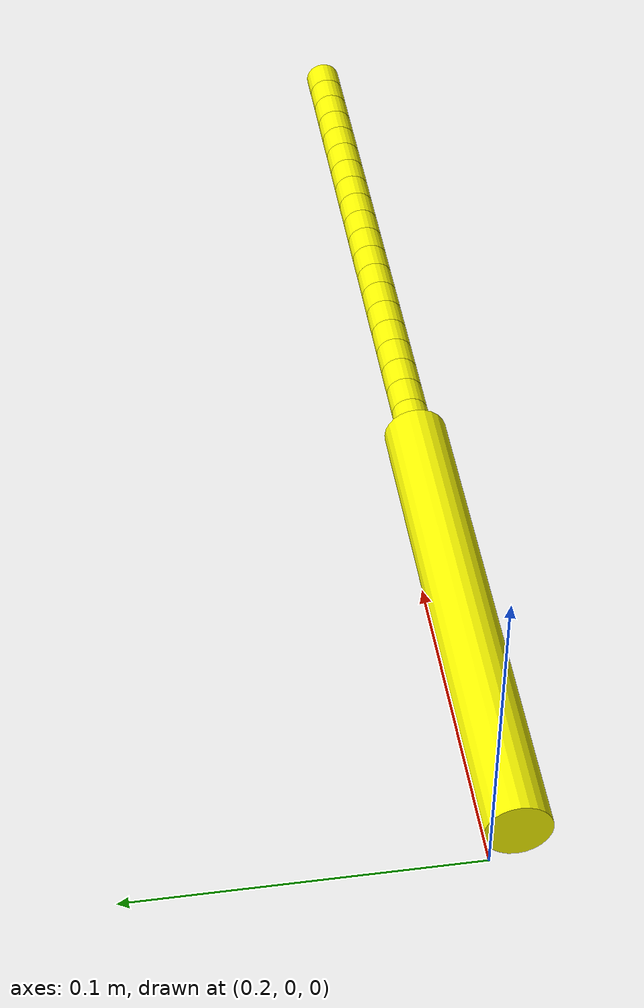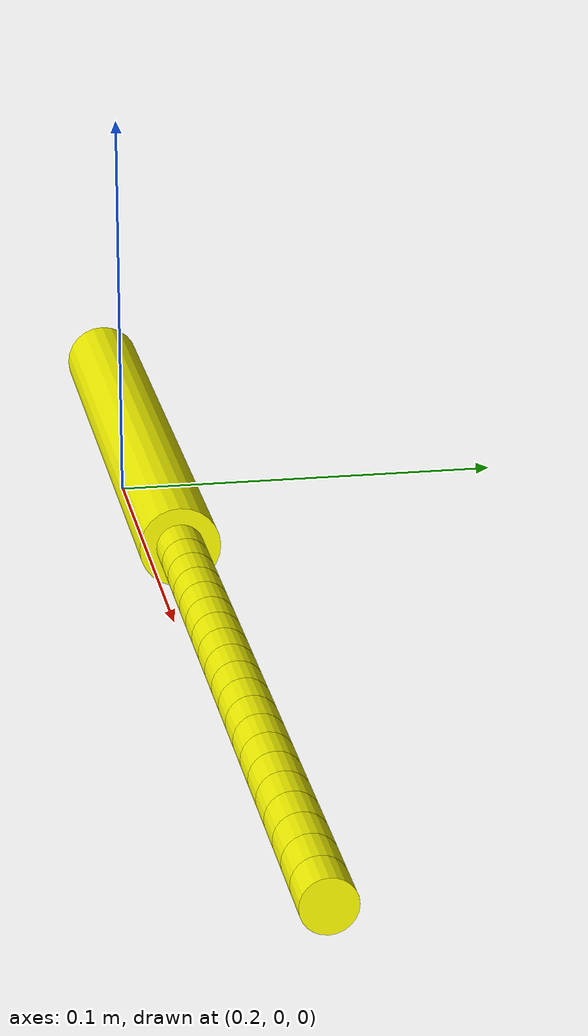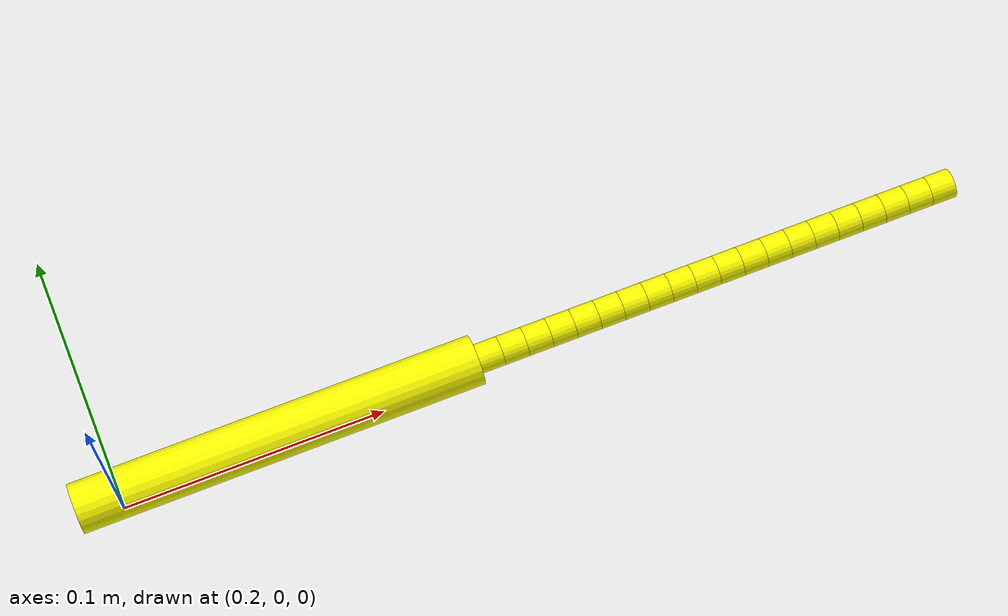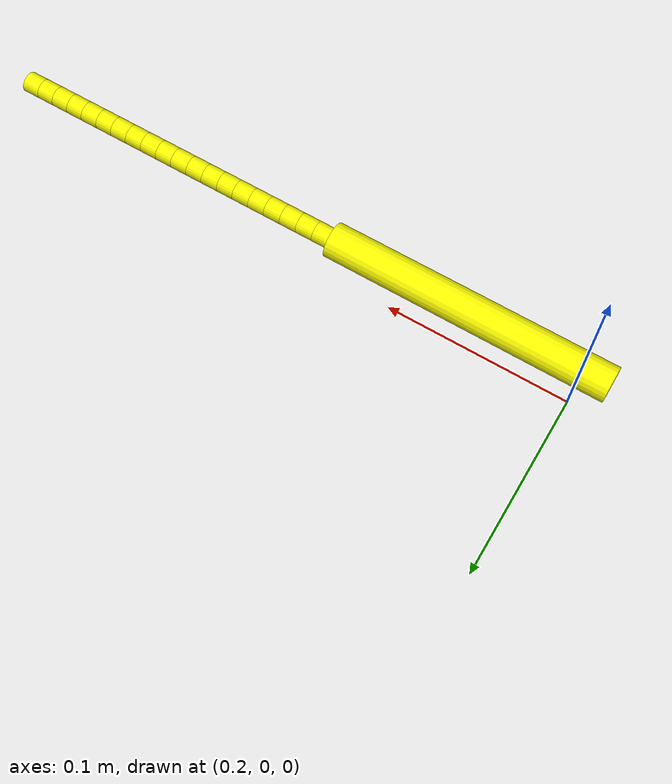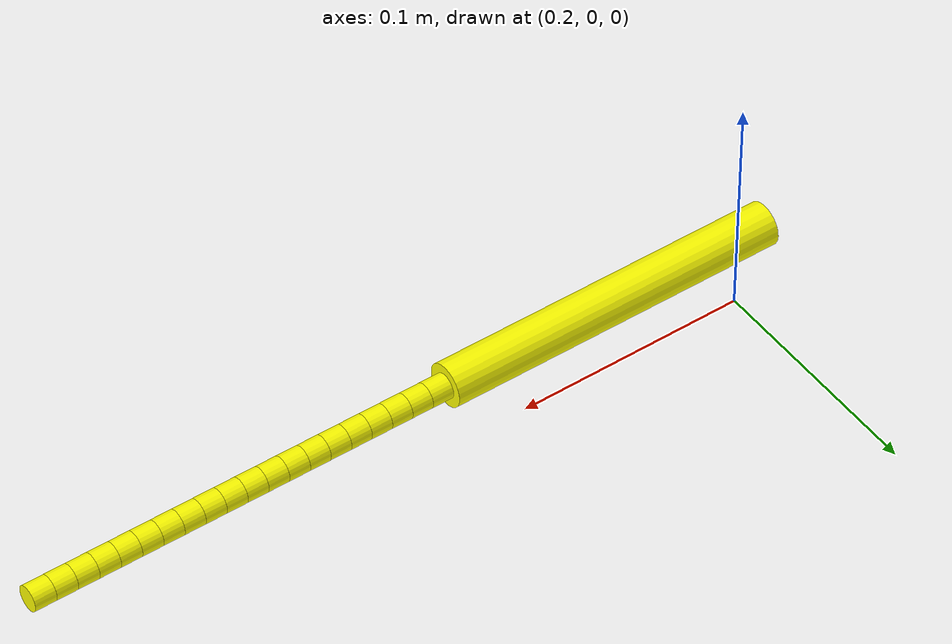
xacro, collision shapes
<?xml version="1.0"?>
<robot xmlns:xacro="http://www.ros.org/wiki/xacro" name="manipulator">
  <material name="white">
    <color rgba="1 1 1 1" />
  </material>
  <material name="blue">
    <color rgba="0 0 .8 1" />
  </material>
  <material name="yellow">
    <color rgba="1 1 0 1" />
  </material>
  <material name="green">
    <color rgba="0 1 0 1" />
  </material>
  <material name="orange">
    <color rgba="0.255 0.165 0 1" />
  </material>
  <material name="red">
    <color rgba="1 0 0 1" />
  </material>

  <xacro:property name="link_radius" value="0.005405" />
  <xacro:property name="link_length" value="0.00923" />
  <xacro:property name="num_links" value="20" />
  <xacro:property name="first_length" value="0.15" />
  <xacro:property name="first_radius" value="0.00923" />
  <xacro:property name="joint_limit" value="0.78" />

  <xacro:macro name="default_inertial" params="mass">
    <inertial>
      <mass value="${mass}" />
      <inertia ixx="1.0" ixy="0.0" ixz="0.0" iyy="1.0" iyz="0.0" izz="1.0" />
    </inertial>
  </xacro:macro>

  <link name="world" />

  <joint name="world_to_base_link=" type="fixed">
      <parent link="world"/>
      <child link="base_link"/>
  </joint>

  <link name="base_link">
    <xacro:default_inertial mass="10"/>
    <visual>
      <geometry>
        <mesh filename="package://medsnake_description/mesh/base_part.STL" scale="0.001 0.001 0.001" />
      </geometry>
      <origin rpy="1.5707963 0 -1.5707963" xyz="0.822 0.315 -0.22" />
      <material name="blue" />
    </visual>

    <static>1</static>
  </link>

  <joint name="joint_inner" type="prismatic">
    <parent link="base_link" />
    <child link="link_inner" />
    <origin rpy="1.5707963 0 1.5707963" xyz="0.01 0 0.04" />
    <limit effort="1000" lower="0" upper="0.35000000000000003" velocity="180" />
    <axis xyz="0 0 1" />
  </joint>

  <transmission name="inner_trans">
    <type>transmission_interface/SimpleTransmission</type>
    <actuator name="$inner_motor">
      <hardwareInterface>hardware_interface/PositionJointInterface</hardwareInterface>
      <mechanicalReduction>1</mechanicalReduction>
    </actuator>
    <joint name="joint_inner">
          <hardwareInterface>hardware_interface/PositionJointInterface</hardwareInterface>
    </joint>
  </transmission>

  <link name="link_inner">
    <inertial>
      <origin rpy="0 0 0" xyz="0 -0.016 0.161" />
      <mass value="7.7" />
      <inertia ixx="0.06718763333333333" ixy="0" ixz="0" iyy="0.06653056666666667" iyz="0" izz="0.0006570666666666666" />
    </inertial>
    <visual>
      <geometry>
        <mesh filename="package://medsnake_description/mesh/inner_part.STL" scale="0.001 0.001 0.001" />
      </geometry>
      <origin rpy="0 3.1415926 0" xyz="0.315 -0.26 0.732" />
      <material name="red" />
    </visual>
    <static>1</static>
  </link>

  <joint name="joint_outer" type="prismatic">
    <parent link="base_link" />
    <child link="link_outer" />
    <origin rpy="1.5707963 0 1.5707963" xyz="0.08 0 0.04" />
    <limit effort="1000" lower="0" upper="0.35000000000000003" velocity="180" />
    <axis xyz="0 0 1" />
  </joint>

  <transmission name="outer_trans">
    <type>transmission_interface/SimpleTransmission</type>
    <actuator name="$outer_motor">
         <hardwareInterface>hardware_interface/PositionJointInterface</hardwareInterface>
      <mechanicalReduction>1</mechanicalReduction>
    </actuator>
    <joint name="joint_outer">
       <hardwareInterface>hardware_interface/PositionJointInterface</hardwareInterface>
    </joint>
  </transmission>

  <link name="link_outer">
    <xacro:default_inertial mass="7.7"/>
    <visual>
      <geometry>
        <mesh filename="package://medsnake_description/mesh/outer_part.STL" scale="0.001 0.001 0.001" />
      </geometry>
      <origin rpy="0 3.1415926 0" xyz="0.315 -0.26 0.662" />
      <material name="green" />
    </visual>
    <static>1</static>
  </link>

  <joint name="joint_snake" type="fixed">
    <parent link="link_outer" />
    <child link="link_0" />
    <origin rpy="0 0 0" xyz="-0.003 -0.0085 0.105" />
    <limit effort="1000" lower="0" upper="0.35000000000000003" velocity="180" />
    <axis xyz="0 0 1" />
  </joint>

  <link name="link_0">
    <xacro:default_inertial mass="0.1"/>

    <visual>
      <geometry>
        <cylinder length="${first_length}" radius="${link_radius}" />
      </geometry>
      <origin rpy="0 0 0" xyz="0 0 ${first_length/2}" />
      <material name="yellow" />
    </visual>
    <collision>
      <geometry>
        <cylinder length="${first_length}" radius="${first_radius}" />
      </geometry>
      <origin rpy="0 0 0" xyz="0 0 ${first_length/2}" />
    </collision>
  </link>

  <xacro:macro name="snake_piece" params="suffix">
    <xacro:unless value="${suffix == 0}">

      <link name="link_${suffix}">
        <xacro:default_inertial mass="0.1"/>
        <visual>
          <geometry>
            <mesh filename="package://medsnake_description/mesh/snake_outer_link.STL" scale="0.001 0.001 0.001" />
          </geometry>
          <origin rpy="1.5707963 0 0" xyz="0 0 ${link_length/2}" />
          <material name="yellow" />
        </visual>
        <collision>
          <geometry>
            <cylinder length="${link_length}" radius="${link_radius}" />
          </geometry>
          <origin rpy="0 0 0" xyz="0 0 ${link_length/2}" />
        </collision>
      </link>

      <joint name="balljoint_${suffix}_0" type="revolute">
        <parent link="link_${suffix-1}" />
        <child link="zero_link_${suffix}_0" />
        <xacro:if value="${suffix ==1}">
          <origin rpy="0 0 0" xyz="0 0 ${first_length}" />
        </xacro:if>
        <xacro:unless value="${suffix == 1}">
          <origin rpy="0 0 0" xyz="0 0 ${link_length}" />
        </xacro:unless>
        <axis xyz="1 0 0" />
        <limit effort="1000.0" lower="-${joint_limit}" upper="${joint_limit}" velocity="0.5" />
      </joint>

      <transmission name="balljoint_${suffix}_0_trans">
        <type>transmission_interface/SimpleTransmission</type>
        <actuator name="$balljoint_${suffix}_0_motor">
          <hardwareInterface>hardware_interface/PositionJointInterface</hardwareInterface>
          <mechanicalReduction>1</mechanicalReduction>
        </actuator>
        <joint name="balljoint_${suffix}_0">
          <hardwareInterface>hardware_interface/PositionJointInterface</hardwareInterface>
        </joint>
      </transmission>

      <link name="zero_link_${suffix}_0">
        <xacro:default_inertial mass="0.1"/>
        <visual>
          <geometry>
            <cylinder length="0" radius="0" />
          </geometry>
          <origin rpy="0 0 0" xyz="0 0 0" />
        </visual>

        <collision>
        <geometry><box size="0 0 0" /></geometry>
        </collision>
      </link>

      <joint name="balljoint_${suffix}_1" type="revolute">
        <parent link="zero_link_${suffix}_0" />
        <child link="zero_link_${suffix}_1" />
        <origin rpy="0 0 0" xyz="0 0 0" />
        <axis xyz="0 1 0" />
        <limit effort="1000.0" lower="-${joint_limit}" upper="${joint_limit}" velocity="0.5" />
      </joint>

      <transmission name="balljoint_${suffix}_1_trans">
        <type>transmission_interface/SimpleTransmission</type>
        <actuator name="$balljoint_${suffix}_1_motor">
          <hardwareInterface>hardware_interface/PositionJointInterface</hardwareInterface>
          <mechanicalReduction>1</mechanicalReduction>
        </actuator>
        <joint name="balljoint_${suffix}_1">
          <hardwareInterface>hardware_interface/PositionJointInterface</hardwareInterface>
        </joint>
      </transmission>

      <link name="zero_link_${suffix}_1">
        <xacro:default_inertial mass="0.1"/>
        <visual>
          <geometry>
            <cylinder length="0" radius="0" />
          </geometry>
          <origin rpy="0 0 0" xyz="0 0 0" />
        </visual>

        <collision>
        <geometry><box size="0 0 0" /></geometry>
        </collision>
      </link>

      <joint name="balljoint_${suffix}_2" type="revolute">
        <parent link="zero_link_${suffix}_1" />
        <child link="link_${suffix}" />
        <origin rpy="0 0 0" xyz="0 0 0" />
        <axis xyz="0 0 1" />
        <limit effort="1000.0" lower="-${joint_limit}" upper="${joint_limit}" velocity="0.5" />
      </joint>
    </xacro:unless>
  </xacro:macro>

  <xacro:macro name="loop" params="num_links">
    <xacro:snake_piece suffix="${num_links}" />
    <xacro:if value="${num_links}">
      <xacro:loop num_links="${num_links-1}" />
    </xacro:if>
  </xacro:macro>

  <xacro:loop num_links="${num_links}" />

  <gazebo>
    <plugin name="gazebo_ros_control" filename="libgazebo_ros_control.so">
      <robotNamespace>/medsnake</robotNamespace>
    </plugin>
  </gazebo>

  <gazebo>
    <plugin name="joint_state_publisher" filename="libgazebo_ros_joint_state_publisher.so">
      <jointName> balljoint_1_0, balljoint_2_0 </jointName>
      <robotNamespace>/medsnake</robotNamespace>
      <updateRate>50.0</updateRate>
      <alwaysOn>true</alwaysOn>
    </plugin>
  </gazebo>
</robot>
